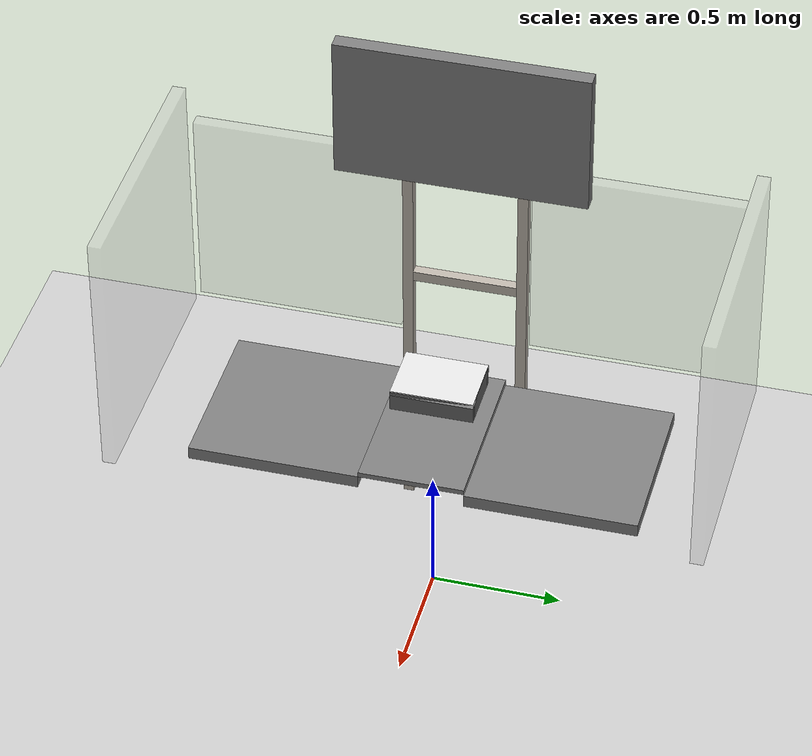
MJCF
<mujoco model="table_arena">
  <compiler angle="radian" inertiagrouprange="0 0" autolimits="true"/>

  <asset>
    <texture builtin="gradient" height="256" rgb1=".9 .9 1." rgb2=".2 .3 .4" type="skybox" width="256"/>
    <texture file="../textures/light-gray-floor-tile.png" type="2d" name="texplane"/>
    <material name="floorplane" reflectance="0.01" shininess="0.0" specular="0.0" texrepeat="2 2" texture="texplane" texuniform="true"/>
    <!-- ceramic table texture and material-->
    <texture file="../textures/metal.png" type="cube" name="tex-metal"/>
    <material name="table_metal" reflectance="0.0" shininess="0.0" specular="0.2" texrepeat="1 1" texture="tex-metal" />
    <!-- steel legs -->
    <texture file="../textures/steel-brushed.png" type="cube" name="tex-steel-brushed"/>
    <material name="table_legs_metal" reflectance="0.8" shininess="0.8" texrepeat="1 1" texture="tex-steel-brushed" />
    <!-- plaster walls -->
    <texture file="../textures/light-gray-plaster.png" type="2d" name="tex-light-gray-plaster"/>
    <material name="walls_mat" reflectance="0.0" shininess="0.1" specular="0.1" texrepeat="3 3" texture="tex-light-gray-plaster" texuniform="true" />
    <!-- aluminium_extrusion plate -->
    <texture file="../textures/aluminium_extrusion.png" type="2d" name="aluminium-extrusion"/>
    <material name="aluminium_extrusion" reflectance="0.0" shininess="0.1" specular="0.1" texrepeat="3 3" texture="aluminium-extrusion" texuniform="true" />
    <!-- added table texture and material for domain randomization -->
    <texture name="textable" builtin="flat" height="512" width="512" rgb1="0.5 0.5 0.5" rgb2="0.5 0.5 0.5"/>
    <material name="table_mat" texture="textable" />
    <!-- tv -->
    <texture file="../textures/tv.png" type="2d" name="tex-tv"/>
    <material name="tv_mat" reflectance="0.0" shininess="0.1" specular="0.1" texrepeat="1 1" texture="tex-tv" />
    <material name="collision_light" specular="0.5" shininess="0.25" rgba="0.7 0.7 0.7 0.1"/>

  </asset>
  <worldbody>
    <!-- Floor -->
    <geom condim="3" group="1" material="floorplane" name="floor" pos="0 0 0" size="3 3 .125" type="plane"/>
    <!-- Walls (visual only) -->

    <!-- Robots Tables -->
    <body name="workspace" pos="0 0 0">
      <!-- A_BOT table -->
      <geom size="0.325 0.325 0.025" pos="-0.003 -0.527 0.725" type="box" group="0" name="a_bot_table_collision" friction="1 0.005 0.0001"/>
      <geom size="0.325 0.325 0.025" pos="-0.003 -0.527 0.725" type="box" conaffinity="0" contype="0" group="1" name="a_bot_table_visual" material="table_metal"/>
      <site pos="0 0 0.01" name="table_top" size="0.001 0.001 0.001" rgba="0 0 0 0"/>

      <!-- B_BOT table -->
      <geom size="0.325 0.325 0.025" pos="0.003 0.525 0.725" type="box" group="0" name="b_bot_table_collision" friction="1 0.005 0.0001"/>
      <geom size="0.325 0.325 0.025" pos="0.003 0.525 0.725" type="box" conaffinity="0" contype="0" group="1" name="b_bot_table_visual" material="table_metal"/>

      <!-- workplate -->
      <geom size="0.325 0.2 0.01" pos="0 0 0.763" type="box" group="0" name="workplate_collision" friction="1 0.005 0.0001"/>
      <geom size="0.325 0.2 0.01" pos="0 0 0.763" type="box" conaffinity="0" contype="0" group="1" name="workplate_visual" material="aluminium_extrusion"/>

      <!-- TV -->
      <geom size="0.48 0.28 0.03" pos="-0.43 0 1.86" euler="0 1.5707 1.5707" type="box" group="0" name="tv_collision" friction="1 0.005 0.0001"/>
      <geom size="0.48 0.28 0.03" pos="-0.43 0 1.86" euler="0 1.5707 1.5707" type="box" conaffinity="0" contype="0" group="1" name="tv_visual" material="tv_mat"/>

      <!-- TV stand vertical-->
      <geom size="0.02 0.02 1" pos="-0.495 0.22 1" type="box" conaffinity="0" contype="0" group="1" name="tv_vbar_right_visual" material="table_legs_metal"/>
      <geom size="0.02 0.02 1" pos="-0.495 -0.22 1" type="box" conaffinity="0" contype="0" group="1" name="tv_vbar_left_visual" material="table_legs_metal"/>
      <!-- TV stand horizontal-->
      <geom size="0.02 0.2 0.02" pos="-0.495 0 1.98" type="box" conaffinity="0" contype="0" group="1" name="tv_hbar_up_visual" material="table_legs_metal"/>
      <geom size="0.02 0.2 0.02" pos="-0.495 0 1.078" type="box" conaffinity="0" contype="0" group="1" name="tv_hbar_middle_visual" material="table_legs_metal"/>

      <!-- Safety limits (Invisible walls) -->
      <geom size="0.025 0.40 0.40" pos="-0.515 -0.65 1.223" type="box" conaffinity="0" contype="0" group="1" name="invisible_wall_1_visual" material="collision_light"/>
      <geom size="0.025 0.40 0.40" pos="-0.515 0.65 1.223" type="box" conaffinity="0" contype="0" group="1" name="invisible_wall_2_visual" material="collision_light"/>
      <geom size="0.5 0.025 0.5" pos="0 1.1 1.273" type="box" conaffinity="0" contype="0" group="1" name="invisible_wall_3_visual" material="collision_light"/>
      <geom size="0.5 0.025 0.5" pos="0 -1.1 1.273" type="box" conaffinity="0" contype="0" group="1" name="invisible_wall_4_visual" material="collision_light"/>

      <!-- base fixture -->
      <geom size="0.12 0.16 0.0025" pos="-0.174 -0.02 0.8555" type="box" conaffinity="0" contype="0" group="1" name="base_fixture_0_visual" rgba="0.9 0.9 0.9 1"/>
      <geom size="0.01 0.16 0.04" pos="-0.284 -0.02 0.813" type="box" conaffinity="0" contype="0" group="1" name="base_fixture_3_visual" rgba="0.4 0.4 0.4 1"/>
      <geom size="0.01 0.16 0.04" pos="-0.064 -0.02 0.813" type="box" conaffinity="0" contype="0" group="1" name="base_fixture_4_visual" rgba="0.4 0.4 0.4 1"/>
      <geom size="0.1 0.01 0.04" pos="-0.174 -0.17 0.813" type="box" conaffinity="0" contype="0" group="1" name="base_fixture_5_visual" rgba="0.4 0.4 0.4 1"/>
      <geom size="0.1 0.01 0.04" pos="-0.174 0.13 0.813" type="box" conaffinity="0" contype="0" group="1" name="base_fixture_6_visual" rgba="0.4 0.4 0.4 1"/>
      <geom size="0.12 0.16 0.01" pos="-0.174 -0.02 0.848" type="box" group="0" name="base_fixture_0_collision" rgba="0.9 0.9 0.9 1"/>
      <geom size="0.01 0.16 0.04" pos="-0.284 -0.02 0.813" type="box" group="0" name="base_fixture_3_collision" rgba="0.4 0.4 0.4 1"/>
      <geom size="0.01 0.16 0.04" pos="-0.064 -0.02 0.813" type="box" group="0" name="base_fixture_4_collision" rgba="0.4 0.4 0.4 1"/>
      <geom size="0.1 0.01 0.04" pos="-0.174 -0.17 0.813" type="box" group="0" name="base_fixture_5_collision" rgba="0.4 0.4 0.4 1"/>
      <geom size="0.1 0.01 0.04" pos="-0.174 0.13 0.813" type="box" group="0" name="base_fixture_6_collision" rgba="0.4 0.4 0.4 1"/>
    </body>

    <light pos="1.0 1.0 1.5" dir="-0.2 -0.2 -1" specular="0.3 0.3 0.3" directional="true" castshadow="false"/>

    <!-- front view -->
    <camera mode="fixed" name="frontview" pos="2.0 0 1.9" quat="0.56 0.43 0.43 0.56"/>
    <!-- close up view -->
    <camera mode="fixed" name="closeview" pos="1.5 0 1.4" quat="0.56 0.43 0.43 0.56"/>
    <!-- bird view -->
    <camera mode="fixed" name="birdview" pos="-0.2 0 3.0" quat="0.7071 0 0 0.7071"/>
    <!-- agent view -->
    <camera mode="fixed" name="agentview" pos="0.5 0 1.35" quat="0.653 0.271 0.271 0.653"/>
    <!-- side view -->
    <camera mode="fixed" name="sideview_osx" pos="-0.05651774593317116 1.2761224129427358 1.4879572214102434" quat="0.009905065491771751 0.006877963156909582 0.5912228352893879 0.806418094001364" />

  </worldbody>
</mujoco>
